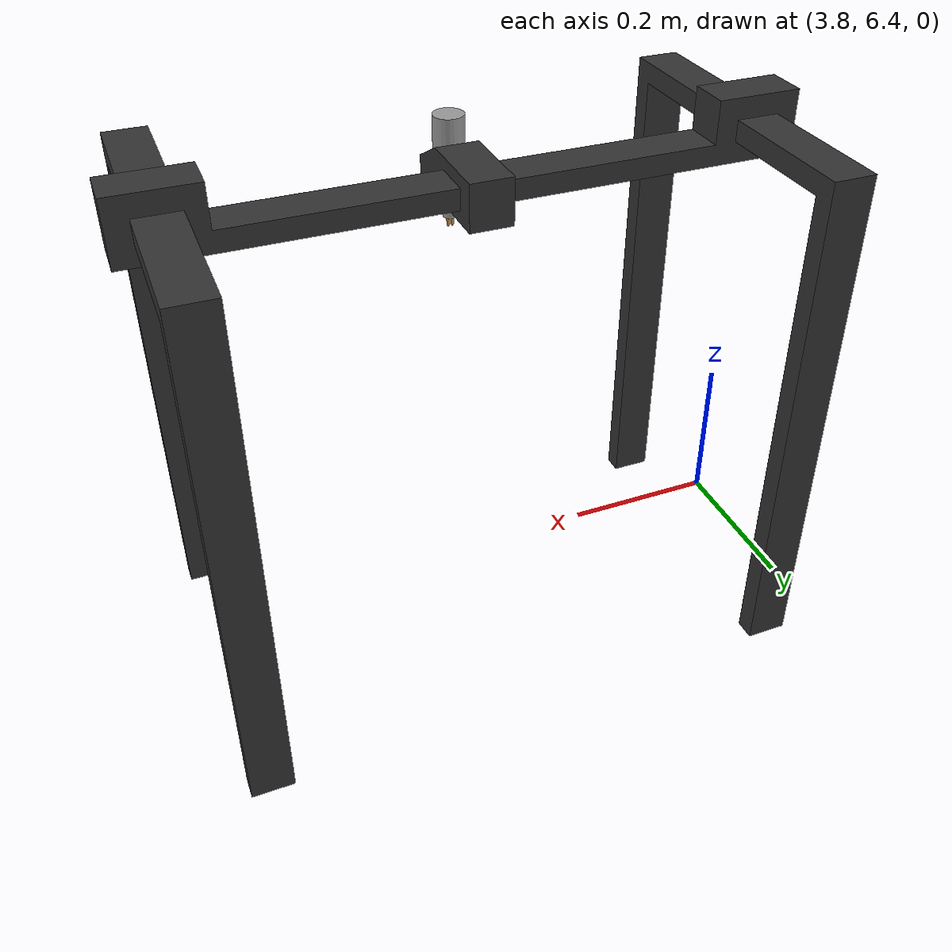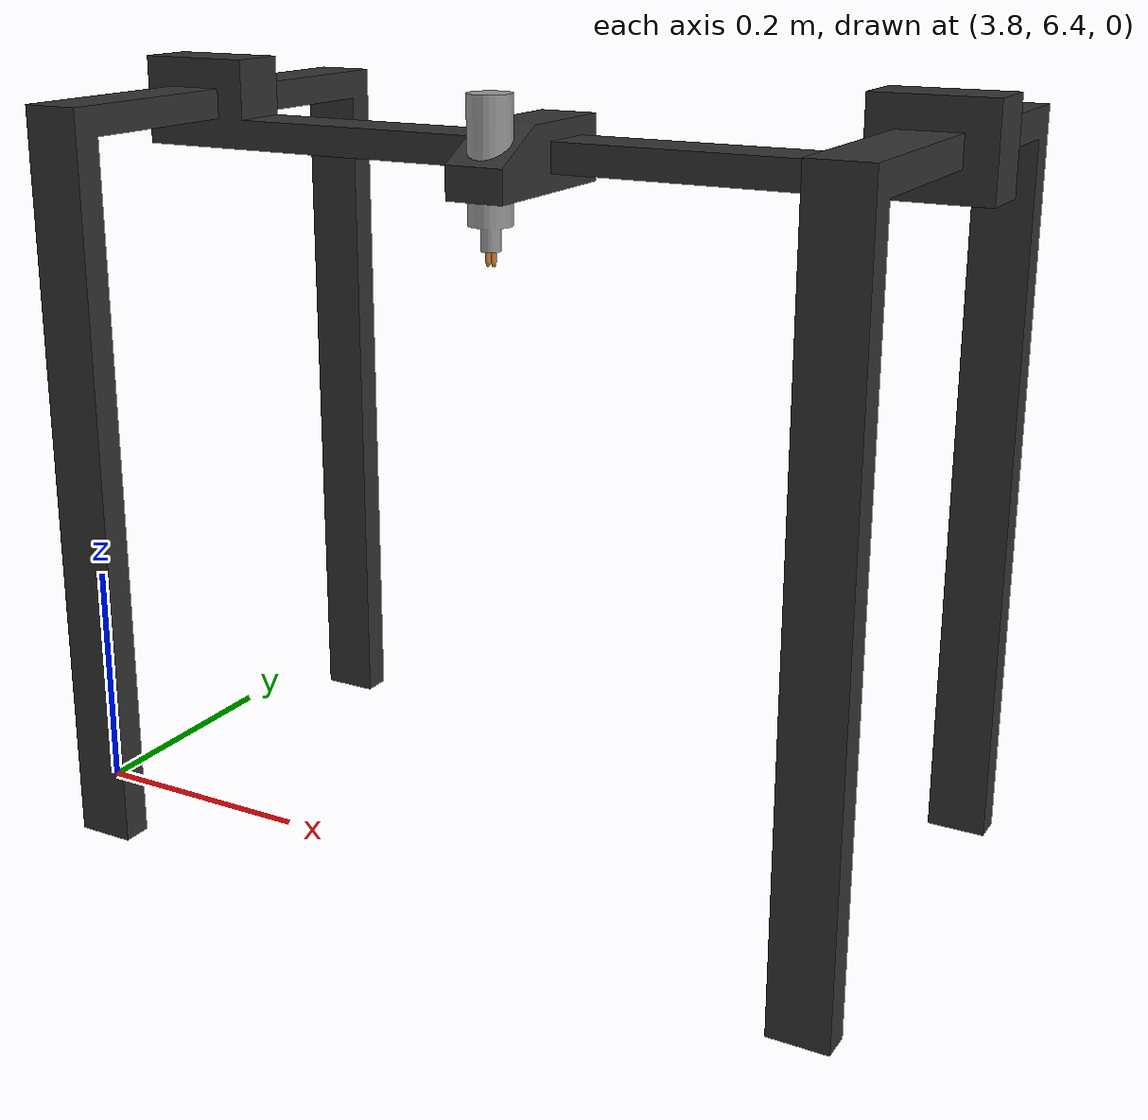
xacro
<?xml version="1.0" ?>
<robot xmlns:xacro="http://www.ros.org/wiki/xacro" name="assembly_robot_1">

  <!-- include macros -->
  <xacro:include filename="$(find ariac_description)/urdf/gantry_welder_macro.xacro"/>
  <xacro:include filename="$(find ariac_description)/urdf/gantry_welder.ros2_control.xacro"/>

  <link name="world"/>

  <gazebo
    reference="world">
  </gazebo>

  <!-- run gantry macro -->
  <xacro:gantry_welder/>

  <!-- run ros2 control macro -->
  <xacro:gantry_welder_ros2_control/>

  <joint name="world_to_base" type="fixed">
    <parent link="world"/>
    <child link="gantry_base_link"/>
    <origin xyz="4.2 6.5 0.002" rpy="0 0 0"/>
  </joint>

  <gazebo>
    <plugin filename="libgz_ros2_control-system" name="gz_ros2_control::GazeboSimROS2ControlPlugin">
      <ros>
        <namespace>gantry_welder</namespace>
      </ros>
      <parameters>$(find ariac_description)/config/gantry_welder_controllers.yaml</parameters>
    </plugin>
    <plugin filename="libWelderPlugin.so" name="ariac_plugins::WelderPlugin">
      <ros>
        <namespace>gantry_welder</namespace>
      </ros>
    </plugin>
  </gazebo>

</robot>

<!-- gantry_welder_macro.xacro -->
<robot xmlns:xacro="http://wiki.ros.org/xacro">
  <xacro:macro name="gantry_welder" params="">

    <material name="gray">
      <color rgba="0.6 0.6 0.6 1"/>
    </material>

    <material name="black">
      <color rgba="0.2 0.2 0.2 1"/>
    </material>

    <material name="gold">
      <color rgba="0.8 0.5 0.2 1"/>
    </material>

    <!-- Links -->
    <link name="gantry_base_link">
      <visual>
        <geometry>
          <mesh filename="file://$(find ariac_description)/meshes/gantry_welder/left_support.stl"/>
        </geometry>
        <material name="black"/>
      </visual>

      <visual>
        <geometry>
          <mesh filename="file://$(find ariac_description)/meshes/gantry_welder/right_support.stl"/>
        </geometry>
        <material name="black"/>
      </visual>

      <collision>
        <geometry>
          <mesh filename="file://$(find ariac_description)/meshes/gantry_welder/left_support.stl"/>
        </geometry>
      </collision>

      <collision>
        <geometry>
          <mesh filename="file://$(find ariac_description)/meshes/gantry_welder/right_support.stl"/>
        </geometry>
      </collision>

      <inertial>
        <mass value="5.0"/>
        <origin xyz="0 0 0" rpy="0 0 0"/>
        <inertia ixx="0.01" ixy="0.0" ixz="0.0" iyy="0.01" iyz="0.0" izz="0.01"/>
      </inertial>
    </link>

    <link name="gantry_rail">
      <visual>
        <geometry>
          <mesh filename="file://$(find ariac_description)/meshes/gantry_welder/rail.stl"/>
        </geometry>
        <material name="black"/>
      </visual>

      <collision>
        <geometry>
          <mesh filename="file://$(find ariac_description)/meshes/gantry_welder/rail.stl"/>
        </geometry>
      </collision>

      <inertial>
        <mass value="1.0"/>
        <origin xyz="0 0 0" rpy="0 0 0"/>
        <inertia ixx="0.01" ixy="0.0" ixz="0.0" iyy="0.01" iyz="0.0" izz="0.01"/>
      </inertial>
    </link>

    <link name="gantry_carriage">
      <visual>
        <geometry>
          <mesh filename="file://$(find ariac_description)/meshes/gantry_welder/carriage.stl"/>
        </geometry>
        <material name="black"/>
      </visual>

      <collision>
        <geometry>
          <mesh filename="file://$(find ariac_description)/meshes/gantry_welder/carriage.stl"/>
        </geometry>
      </collision>

      <inertial>
        <mass value="1.0"/>
        <origin xyz="0 0 0" rpy="0 0 0"/>
        <inertia ixx="0.01" ixy="0.0" ixz="0.0" iyy="0.01" iyz="0.0" izz="0.01"/>
      </inertial>
    </link>

    <link name="welder_base">
      <visual>
        <geometry>
          <mesh filename="file://$(find ariac_description)/meshes/gantry_welder/welder.stl"/>
        </geometry>
        <material name="gray"/>
      </visual>

      <collision>
        <geometry>
          <mesh filename="file://$(find ariac_description)/meshes/gantry_welder/welder.stl"/>
        </geometry>
      </collision>

      <inertial>
        <mass value="1.0"/>
        <origin xyz="0 0 0" rpy="0 0 0"/>
        <inertia ixx="0.01" ixy="0.0" ixz="0.0" iyy="0.01" iyz="0.0" izz="0.01"/>
      </inertial>
    </link>

    <link name="welder_electrodes">
      <visual>
        <origin xyz="0.0025 0 -0.012" rpy="0 0 0"/>
        <geometry>
          <mesh filename="file://$(find ariac_description)/meshes/gantry_welder/electrode.stl"/>
        </geometry>
        <material name="gold"/>
      </visual>

      <visual>
        <origin xyz="-0.0025 0 -0.012" rpy="0 0 0"/>
        <geometry>
          <mesh filename="file://$(find ariac_description)/meshes/gantry_welder/electrode.stl"/>
        </geometry>
        <material name="gold"/>
      </visual>

      <collision>
        <origin xyz="0.0025 0 -0.006" rpy="0 0 0"/>
        <geometry>
          <cylinder length="0.012" radius="0.0015"/>
        </geometry>
      </collision>

      <collision>
        <origin xyz="-0.0025 0 -0.006" rpy="0 0 0"/>
        <geometry>
          <cylinder length="0.012" radius="0.0015"/>
        </geometry>
      </collision>

      <inertial>
        <mass value="0.05"/>
        <origin xyz="0 0 0" rpy="0 0 0"/>
        <inertia ixx="0.01" ixy="0.0" ixz="0.0" iyy="0.01" iyz="0.0" izz="0.01"/>
      </inertial>
    </link>

    <!-- Joints -->
    <joint name="longitudinal_slide_joint" type="prismatic">
      <origin xyz="0 0 0" rpy="0 0 0"/>
      <parent link="gantry_base_link"/>
      <child link="gantry_rail"/>
      <axis xyz="0 -1 0"/>
      <limit effort="1000.0" lower="-0.15" upper="0.15" velocity="1.0"/>
    </joint>

    <joint name="transverse_slide_joint" type="prismatic">
      <origin xyz="0 0 0" rpy="0 0 0"/>
      <parent link="gantry_rail"/>
      <child link="gantry_carriage"/>
      <axis xyz="1 0 0"/>
      <limit effort="1000.0" lower="-0.25" upper="0.25" velocity="2.0"/>
    </joint>

    <joint name="vertical_lift_joint" type="prismatic">
      <origin xyz="0 0 0" rpy="0 0 0"/>
      <parent link="gantry_carriage"/>
      <child link="welder_base"/>
      <axis xyz="0 0 1"/>
      <limit effort="100.0" lower="-0.025" upper="0.015" velocity="4.0"/>
    </joint>

    <joint name="electrodes_joint" type="fixed">
      <origin xyz="0 -0.075 0.515" rpy="${pi} 0 0"/>
      <parent link="welder_base"/>
      <child link="welder_electrodes"/>
    </joint>

    <gazebo reference="electrodes_joint">
      <preserveFixedJoint>true</preserveFixedJoint>
    </gazebo>

    <gazebo reference="welder_electrodes">
      <sensor name='welder_contact_sensor_1' type='contact'>
        <update_rate>30</update_rate>
        <contact>
          <collision>welder_electrodes_collision</collision>
        </contact>
      </sensor>
      <sensor name='welder_contact_sensor_2' type='contact'>
        <contact>
          <collision>welder_electrodes_collision_1</collision>
        </contact>
      </sensor>
    </gazebo>

  </xacro:macro>
</robot>
